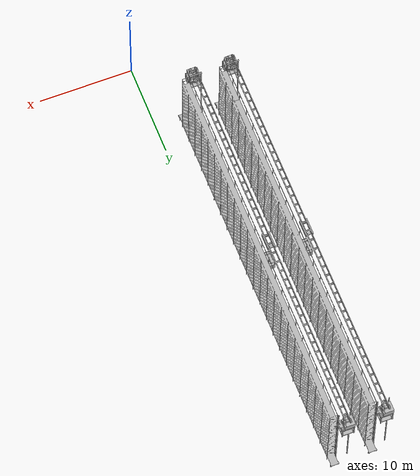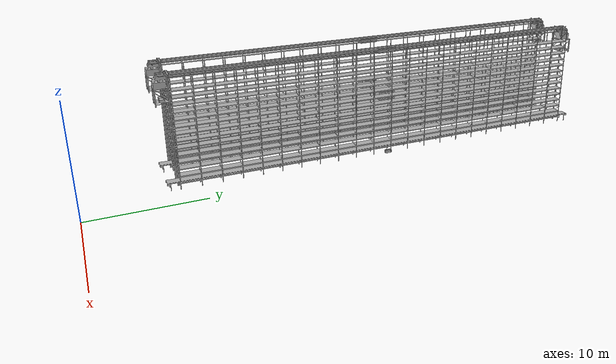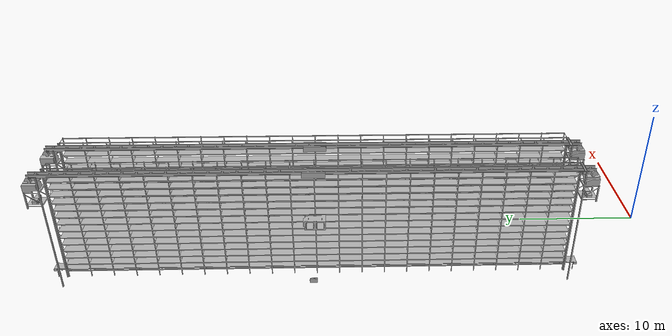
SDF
<sdf version="1.7">
 <world name="default">
  <model name="shelf_final">
   <link name="base_link">
    <inertial>
     <pose>-0.030933 4.00784 -0.011365 0 -0 0</pose>
     <mass>15769.4</mass>
     <inertia>
      <ixx>74236.4</ixx>
      <ixy>1602.61</ixy>
      <ixz>1401.86</ixz>
      <iyy>1.40458e+06</iyy>
      <iyz>703.014</iyz>
      <izz>1.44711e+06</izz>
     </inertia>
    </inertial>
    <collision name="base_link_collision">
     <geometry><mesh><scale>1 1 1</scale><uri>model://shelf_final/meshes/base_link.STL</uri></mesh></geometry>
    </collision>
    <collision name="base_link_fixed_joint_lump__R02_2_collision_1">
     <geometry><mesh><scale>1 1 1</scale><uri>model://shelf_final/meshes/R02_2.STL</uri></mesh></geometry>
    </collision>
    <collision name="base_link_fixed_joint_lump__bank1_collision_2">
     <geometry><mesh><scale>1 1 1</scale><uri>model://shelf_final/meshes/bank1.STL</uri></mesh></geometry>
    </collision>
    <collision name="base_link_fixed_joint_lump__bank3_collision_3">
     <geometry><mesh><scale>1 1 1</scale><uri>model://shelf_final/meshes/bank3.STL</uri></mesh></geometry>
    </collision>
    <collision name="base_link_fixed_joint_lump__bank4_collision_4">
     <geometry><mesh><scale>1 1 1</scale><uri>model://shelf_final/meshes/bank4.STL</uri></mesh></geometry>
    </collision>
    <collision name="base_link_fixed_joint_lump__bank2_collision_5">
     <geometry><mesh><scale>1 1 1</scale><uri>model://shelf_final/meshes/bank2.STL</uri></mesh></geometry>
    </collision>
    <collision name="base_link_fixed_joint_lump__part7_1_collision_6">
     <geometry><mesh><scale>1 1 1</scale><uri>model://shelf_final/meshes/part7_1.STL</uri></mesh></geometry>
    </collision>
    <collision name="base_link_fixed_joint_lump__part7_2_collision_7">
     <geometry><mesh><scale>1 1 1</scale><uri>model://shelf_final/meshes/part7_2.STL</uri></mesh></geometry>
    </collision>
    <collision name="base_link_fixed_joint_lump__roof_rack2_collision_8">
     <geometry><mesh><scale>1 1 1</scale><uri>model://shelf_final/meshes/roof_rack2.STL</uri></mesh></geometry>
    </collision>
    <collision name="base_link_fixed_joint_lump__roof_rack_collision_9">
     <geometry><mesh><scale>1 1 1</scale><uri>model://shelf_final/meshes/roof_rack.STL</uri></mesh></geometry>
    </collision>
    <collision name="base_link_fixed_joint_lump__ss_1_collision_10">
     <geometry><mesh><scale>1 1 1</scale><uri>model://shelf_final/meshes/ss_1.STL</uri></mesh></geometry>
    </collision>
    <collision name="base_link_fixed_joint_lump__ss_2_collision_11">
     <geometry><mesh><scale>1 1 1</scale><uri>model://shelf_final/meshes/ss_2.STL</uri></mesh></geometry>
    </collision>
    <collision name="base_link_fixed_joint_lump__traction1_collision_12">
     <geometry><mesh><scale>1 1 1</scale><uri>model://shelf_final/meshes/traction1.STL</uri></mesh></geometry>
    </collision>
    <collision name="base_link_fixed_joint_lump__traction2_collision_13">
     <geometry><mesh><scale>1 1 1</scale><uri>model://shelf_final/meshes/traction2.STL</uri></mesh></geometry>
    </collision>
    <visual name="base_link_visual">
     <geometry><mesh><scale>1 1 1</scale><uri>model://shelf_final/meshes/base_link.STL</uri></mesh></geometry>
    </visual>
    <visual name="base_link_fixed_joint_lump__R02_2_visual_1">
     <geometry><mesh><scale>1 1 1</scale><uri>model://shelf_final/meshes/R02_2.STL</uri></mesh></geometry>
    </visual>
    <visual name="base_link_fixed_joint_lump__bank1_visual_2">
     <geometry><mesh><scale>1 1 1</scale><uri>model://shelf_final/meshes/bank1.STL</uri></mesh></geometry>
    </visual>
    <visual name="base_link_fixed_joint_lump__bank3_visual_3">
     <geometry><mesh><scale>1 1 1</scale><uri>model://shelf_final/meshes/bank3.STL</uri></mesh></geometry>
    </visual>
    <visual name="base_link_fixed_joint_lump__bank4_visual_4">
     <geometry><mesh><scale>1 1 1</scale><uri>model://shelf_final/meshes/bank4.STL</uri></mesh></geometry>
    </visual>
    <visual name="base_link_fixed_joint_lump__bank2_visual_5">
     <geometry><mesh><scale>1 1 1</scale><uri>model://shelf_final/meshes/bank2.STL</uri></mesh></geometry>
    </visual>
    <visual name="base_link_fixed_joint_lump__part7_1_visual_6">
     <geometry><mesh><scale>1 1 1</scale><uri>model://shelf_final/meshes/part7_1.STL</uri></mesh></geometry>
    </visual>
    <visual name="base_link_fixed_joint_lump__part7_2_visual_7">
     <geometry><mesh><scale>1 1 1</scale><uri>model://shelf_final/meshes/part7_2.STL</uri></mesh></geometry>
    </visual>
    <visual name="base_link_fixed_joint_lump__roof_rack2_visual_8">
     <geometry><mesh><scale>1 1 1</scale><uri>model://shelf_final/meshes/roof_rack2.STL</uri></mesh></geometry>
    </visual>
    <visual name="base_link_fixed_joint_lump__roof_rack_visual_9">
     <geometry><mesh><scale>1 1 1</scale><uri>model://shelf_final/meshes/roof_rack.STL</uri></mesh></geometry>
    </visual>
    <visual name="base_link_fixed_joint_lump__ss_1_visual_10">
     <geometry><mesh><scale>1 1 1</scale><uri>model://shelf_final/meshes/ss_1.STL</uri></mesh></geometry>
    </visual>
    <visual name="base_link_fixed_joint_lump__ss_2_visual_11">
     <geometry><mesh><scale>1 1 1</scale><uri>model://shelf_final/meshes/ss_2.STL</uri></mesh></geometry>
    </visual>
    <visual name="base_link_fixed_joint_lump__traction1_visual_12">
     <geometry><mesh><scale>1 1 1</scale><uri>model://shelf_final/meshes/traction1.STL</uri></mesh></geometry>
    </visual>
    <visual name="base_link_fixed_joint_lump__traction2_visual_13">
     <geometry><mesh><scale>1 1 1</scale><uri>model://shelf_final/meshes/traction2.STL</uri></mesh></geometry>
    </visual>
   </link>
   <joint name="trolley_joint" type="prismatic">
    <pose relative_to="base_link">-0.013045 8.8907 -0.036671 0 -0 0</pose>
    <parent>base_link</parent>
    <child>trolley</child>
    <axis>
     <xyz>-1 0 0</xyz>
     <limit><lower>-50</lower><upper>50</upper></limit>
     <dynamics><spring_reference>0</spring_reference><spring_stiffness>0</spring_stiffness></dynamics>
    </axis>
   </joint>
   <link name="trolley">
    <pose relative_to="trolley_joint">0 0 0 0 -0 0</pose>
    <inertial>
     <pose>0 0.20546 -0 0 -0 0</pose>
     <mass>3.98</mass>
     <inertia>
      <ixx>24.976</ixx>
      <ixy>1.9995e-16</ixy>
      <ixz>-4.452e-15</ixz>
      <iyy>83.309</iyy>
      <iyz>-4.7011e-16</iyz>
      <izz>64.945</izz>
     </inertia>
    </inertial>
    <collision name="trolley_collision">
     <geometry><mesh><scale>1 1 1</scale><uri>model://shelf_final/meshes/trolley.STL</uri></mesh></geometry>
    </collision>
    <visual name="trolley_visual">
     <geometry><mesh><scale>1 1 1</scale><uri>model://shelf_final/meshes/trolley.STL</uri></mesh></geometry>
    </visual>
   </link>
   <joint name="carriage_joint" type="prismatic">
    <pose relative_to="trolley">0 -4.5358 0 0 -0 0</pose>
    <parent>trolley</parent>
    <child>carriage</child>
    <axis>
     <xyz>0 1 0</xyz>
     <limit><lower>-50</lower><upper>50</upper></limit>
     <dynamics><spring_reference>0</spring_reference><spring_stiffness>0</spring_stiffness></dynamics>
    </axis>
   </joint>
   <link name="carriage">
    <pose relative_to="carriage_joint">0 0 0 0 -0 0</pose>
    <inertial>
     <pose>0.041968 0.30521 0.000222 0 -0 0</pose>
     <mass>4.85</mass>
     <inertia>
      <ixx>59.409</ixx>
      <ixy>3.9487e-14</ixy>
      <ixz>1.8761e-14</ixz>
      <iyy>141.75</iyy>
      <iyz>2.0147e-14</iyz>
      <izz>134.72</izz>
     </inertia>
    </inertial>
    <collision name="carriage_collision">
     <geometry><mesh><scale>1 1 1</scale><uri>model://shelf_final/meshes/carriage.STL</uri></mesh></geometry>
    </collision>
    <visual name="carriage_visual">
     <geometry><mesh><scale>1 1 1</scale><uri>model://shelf_final/meshes/carriage.STL</uri></mesh></geometry>
    </visual>
   </link>
   <pose>-7.99946 28 0.653837 1.5708 -0 1.56998</pose>
  </model>
  <model name="shelf_final_clone">
   <link name="base_link">
    <inertial>
     <pose>-0.030933 4.00784 -0.011365 0 -0 0</pose>
     <mass>15769.4</mass>
     <inertia>
      <ixx>74236.4</ixx>
      <ixy>1602.61</ixy>
      <ixz>1401.86</ixz>
      <iyy>1.40458e+06</iyy>
      <iyz>703.014</iyz>
      <izz>1.44711e+06</izz>
     </inertia>
    </inertial>
    <collision name="base_link_collision">
     <geometry><mesh><scale>1 1 1</scale><uri>model://shelf_final/meshes/base_link.STL</uri></mesh></geometry>
    </collision>
    <collision name="base_link_fixed_joint_lump__R02_2_collision_1">
     <geometry><mesh><scale>1 1 1</scale><uri>model://shelf_final/meshes/R02_2.STL</uri></mesh></geometry>
    </collision>
    <collision name="base_link_fixed_joint_lump__bank1_collision_2">
     <geometry><mesh><scale>1 1 1</scale><uri>model://shelf_final/meshes/bank1.STL</uri></mesh></geometry>
    </collision>
    <collision name="base_link_fixed_joint_lump__bank3_collision_3">
     <geometry><mesh><scale>1 1 1</scale><uri>model://shelf_final/meshes/bank3.STL</uri></mesh></geometry>
    </collision>
    <collision name="base_link_fixed_joint_lump__bank4_collision_4">
     <geometry><mesh><scale>1 1 1</scale><uri>model://shelf_final/meshes/bank4.STL</uri></mesh></geometry>
    </collision>
    <collision name="base_link_fixed_joint_lump__bank2_collision_5">
     <geometry><mesh><scale>1 1 1</scale><uri>model://shelf_final/meshes/bank2.STL</uri></mesh></geometry>
    </collision>
    <collision name="base_link_fixed_joint_lump__part7_1_collision_6">
     <geometry><mesh><scale>1 1 1</scale><uri>model://shelf_final/meshes/part7_1.STL</uri></mesh></geometry>
    </collision>
    <collision name="base_link_fixed_joint_lump__part7_2_collision_7">
     <geometry><mesh><scale>1 1 1</scale><uri>model://shelf_final/meshes/part7_2.STL</uri></mesh></geometry>
    </collision>
    <collision name="base_link_fixed_joint_lump__roof_rack2_collision_8">
     <geometry><mesh><scale>1 1 1</scale><uri>model://shelf_final/meshes/roof_rack2.STL</uri></mesh></geometry>
    </collision>
    <collision name="base_link_fixed_joint_lump__roof_rack_collision_9">
     <geometry><mesh><scale>1 1 1</scale><uri>model://shelf_final/meshes/roof_rack.STL</uri></mesh></geometry>
    </collision>
    <collision name="base_link_fixed_joint_lump__ss_1_collision_10">
     <geometry><mesh><scale>1 1 1</scale><uri>model://shelf_final/meshes/ss_1.STL</uri></mesh></geometry>
    </collision>
    <collision name="base_link_fixed_joint_lump__ss_2_collision_11">
     <geometry><mesh><scale>1 1 1</scale><uri>model://shelf_final/meshes/ss_2.STL</uri></mesh></geometry>
    </collision>
    <collision name="base_link_fixed_joint_lump__traction1_collision_12">
     <geometry><mesh><scale>1 1 1</scale><uri>model://shelf_final/meshes/traction1.STL</uri></mesh></geometry>
    </collision>
    <collision name="base_link_fixed_joint_lump__traction2_collision_13">
     <geometry><mesh><scale>1 1 1</scale><uri>model://shelf_final/meshes/traction2.STL</uri></mesh></geometry>
    </collision>
    <visual name="base_link_visual">
     <geometry><mesh><scale>1 1 1</scale><uri>model://shelf_final/meshes/base_link.STL</uri></mesh></geometry>
    </visual>
    <visual name="base_link_fixed_joint_lump__R02_2_visual_1">
     <geometry><mesh><scale>1 1 1</scale><uri>model://shelf_final/meshes/R02_2.STL</uri></mesh></geometry>
    </visual>
    <visual name="base_link_fixed_joint_lump__bank1_visual_2">
     <geometry><mesh><scale>1 1 1</scale><uri>model://shelf_final/meshes/bank1.STL</uri></mesh></geometry>
    </visual>
    <visual name="base_link_fixed_joint_lump__bank3_visual_3">
     <geometry><mesh><scale>1 1 1</scale><uri>model://shelf_final/meshes/bank3.STL</uri></mesh></geometry>
    </visual>
    <visual name="base_link_fixed_joint_lump__bank4_visual_4">
     <geometry><mesh><scale>1 1 1</scale><uri>model://shelf_final/meshes/bank4.STL</uri></mesh></geometry>
    </visual>
    <visual name="base_link_fixed_joint_lump__bank2_visual_5">
     <geometry><mesh><scale>1 1 1</scale><uri>model://shelf_final/meshes/bank2.STL</uri></mesh></geometry>
    </visual>
    <visual name="base_link_fixed_joint_lump__part7_1_visual_6">
     <geometry><mesh><scale>1 1 1</scale><uri>model://shelf_final/meshes/part7_1.STL</uri></mesh></geometry>
    </visual>
    <visual name="base_link_fixed_joint_lump__part7_2_visual_7">
     <geometry><mesh><scale>1 1 1</scale><uri>model://shelf_final/meshes/part7_2.STL</uri></mesh></geometry>
    </visual>
    <visual name="base_link_fixed_joint_lump__roof_rack2_visual_8">
     <geometry><mesh><scale>1 1 1</scale><uri>model://shelf_final/meshes/roof_rack2.STL</uri></mesh></geometry>
    </visual>
    <visual name="base_link_fixed_joint_lump__roof_rack_visual_9">
     <geometry><mesh><scale>1 1 1</scale><uri>model://shelf_final/meshes/roof_rack.STL</uri></mesh></geometry>
    </visual>
    <visual name="base_link_fixed_joint_lump__ss_1_visual_10">
     <geometry><mesh><scale>1 1 1</scale><uri>model://shelf_final/meshes/ss_1.STL</uri></mesh></geometry>
    </visual>
    <visual name="base_link_fixed_joint_lump__ss_2_visual_11">
     <geometry><mesh><scale>1 1 1</scale><uri>model://shelf_final/meshes/ss_2.STL</uri></mesh></geometry>
    </visual>
    <visual name="base_link_fixed_joint_lump__traction1_visual_12">
     <geometry><mesh><scale>1 1 1</scale><uri>model://shelf_final/meshes/traction1.STL</uri></mesh></geometry>
    </visual>
    <visual name="base_link_fixed_joint_lump__traction2_visual_13">
     <geometry><mesh><scale>1 1 1</scale><uri>model://shelf_final/meshes/traction2.STL</uri></mesh></geometry>
    </visual>
   </link>
   <joint name="trolley_joint" type="prismatic">
    <pose relative_to="base_link">-0.013045 8.8907 -0.036671 0 -0 0</pose>
    <parent>base_link</parent>
    <child>trolley</child>
    <axis>
     <xyz>-1 0 0</xyz>
     <limit><lower>-50</lower><upper>50</upper></limit>
     <dynamics><spring_reference>0</spring_reference><spring_stiffness>0</spring_stiffness></dynamics>
    </axis>
   </joint>
   <link name="trolley">
    <pose relative_to="trolley_joint">0 0 0 0 -0 0</pose>
    <inertial>
     <pose>0 0.20546 -0 0 -0 0</pose>
     <mass>3.98</mass>
     <inertia>
      <ixx>24.976</ixx>
      <ixy>1.9995e-16</ixy>
      <ixz>-4.452e-15</ixz>
      <iyy>83.309</iyy>
      <iyz>-4.7011e-16</iyz>
      <izz>64.945</izz>
     </inertia>
    </inertial>
    <collision name="trolley_collision">
     <geometry><mesh><scale>1 1 1</scale><uri>model://shelf_final/meshes/trolley.STL</uri></mesh></geometry>
    </collision>
    <visual name="trolley_visual">
     <geometry><mesh><scale>1 1 1</scale><uri>model://shelf_final/meshes/trolley.STL</uri></mesh></geometry>
    </visual>
   </link>
   <joint name="carriage_joint" type="prismatic">
    <pose relative_to="trolley">0 -4.5358 0 0 -0 0</pose>
    <parent>trolley</parent>
    <child>carriage</child>
    <axis>
     <xyz>0 1 0</xyz>
     <limit><lower>-50</lower><upper>50</upper></limit>
     <dynamics><spring_reference>0</spring_reference><spring_stiffness>0</spring_stiffness></dynamics>
    </axis>
   </joint>
   <link name="carriage">
    <pose relative_to="carriage_joint">0 0 0 0 -0 0</pose>
    <inertial>
     <pose>0.041968 0.30521 0.000222 0 -0 0</pose>
     <mass>4.85</mass>
     <inertia>
      <ixx>59.409</ixx>
      <ixy>3.9487e-14</ixy>
      <ixz>1.8761e-14</ixz>
      <iyy>141.75</iyy>
      <iyz>2.0147e-14</iyz>
      <izz>134.72</izz>
     </inertia>
    </inertial>
    <collision name="carriage_collision">
     <geometry><mesh><scale>1 1 1</scale><uri>model://shelf_final/meshes/carriage.STL</uri></mesh></geometry>
    </collision>
    <visual name="carriage_visual">
     <geometry><mesh><scale>1 1 1</scale><uri>model://shelf_final/meshes/carriage.STL</uri></mesh></geometry>
    </visual>
   </link>
   <pose>-3.99953 28 0.653837 1.5708 0 1.56999</pose>
  </model>
 </world>
</sdf>
